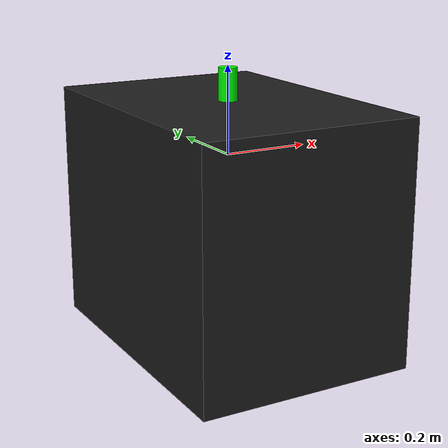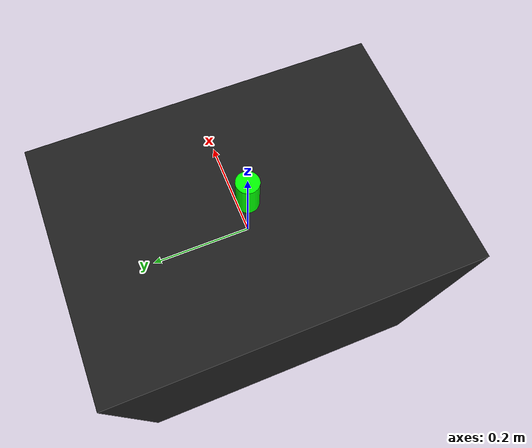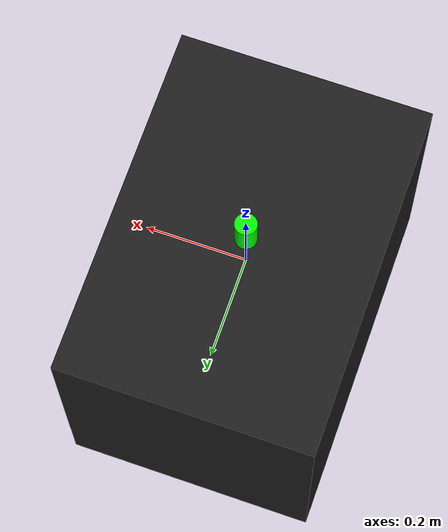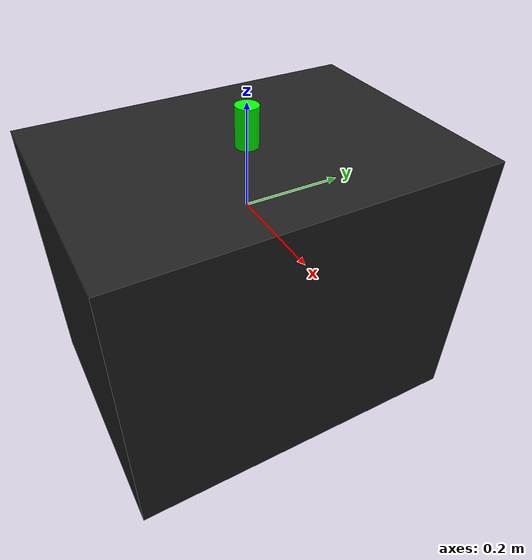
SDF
<?xml version='1.0'?>
<sdf version='1.7'>
  <model name='table0'>
    <link name='link_0'>
      <inertial>
        <mass>0.198587</mass>
        <inertia>
          <ixx>0.0133936</ixx>
          <ixy>0</ixy>
          <ixz>0</ixz>
          <iyy>0.00940129</iyy>
          <iyz>0</iyz>
          <izz>0.0123713</izz>
        </inertia>
        <pose>0 0 0 0 -0 0</pose>
      </inertial>
      <pose>0 0 -0.158872 0 -0 0</pose>
      <gravity>1</gravity>
      <self_collide>1</self_collide>
      <kinematic>0</kinematic>
      <enable_wind>0</enable_wind>
      <visual name='visual'>
        <pose>0 0 0 0 -0 0</pose>
        <geometry>
          <box>
            <size>0.503149 0.703139 0.561189</size>
          </box>
        </geometry>
        <material>
          <lighting>1</lighting>
          <script>
            <uri>file://media/materials/scripts/gazebo.material</uri>
            <name>Gazebo/Black</name>
          </script>
          <shader type='pixel'>
            <normal_map>__default__</normal_map>
          </shader>
          <ambient>0 0 0 1</ambient>
          <diffuse>0 0 0 1</diffuse>
          <specular>0 0 0 1</specular>
          <emissive>0 0 0 1</emissive>
        </material>
        <transparency>0</transparency>
        <cast_shadows>1</cast_shadows>
      </visual>
      <collision name='collision'>
        <laser_retro>0</laser_retro>
        <max_contacts>10</max_contacts>
        <pose>0 0 0 0 -0 0</pose>
        <geometry>
          <box>
            <size>0.503149 0.703139 0.561189</size>
          </box>
        </geometry>
        <surface>
          <friction>
            <ode>
              <mu>1</mu>
              <mu2>1</mu2>
              <fdir1>0 0 0</fdir1>
              <slip1>0</slip1>
              <slip2>0</slip2>
            </ode>
            <torsional>
              <coefficient>1</coefficient>
              <patch_radius>0</patch_radius>
              <surface_radius>0</surface_radius>
              <use_patch_radius>1</use_patch_radius>
              <ode>
                <slip>0</slip>
              </ode>
            </torsional>
          </friction>
          <bounce>
            <restitution_coefficient>0</restitution_coefficient>
            <threshold>1e+06</threshold>
          </bounce>
          <contact>
            <collide_without_contact>0</collide_without_contact>
            <collide_without_contact_bitmask>1</collide_without_contact_bitmask>
            <collide_bitmask>1</collide_bitmask>
            <ode>
              <soft_cfm>0</soft_cfm>
              <soft_erp>0.2</soft_erp>
              <kp>1e+13</kp>
              <kd>1</kd>
              <max_vel>0.01</max_vel>
              <min_depth>0</min_depth>
            </ode>
            <bullet>
              <split_impulse>1</split_impulse>
              <split_impulse_penetration_threshold>-0.01</split_impulse_penetration_threshold>
              <soft_cfm>0</soft_cfm>
              <soft_erp>0.2</soft_erp>
              <kp>1e+13</kp>
              <kd>1</kd>
            </bullet>
          </contact>
        </surface>
      </collision>
    </link>
    <link name='link_1'>
      <inertial>
        <mass>0.00013606</mass>
        <inertia>
          <ixx>8e-08</ixx>
          <ixy>0</ixy>
          <ixz>0</ixz>
          <iyy>8e-08</iyy>
          <iyz>0</iyz>
          <izz>3e-08</izz>
        </inertia>
        <pose>0 0 -0.01 0 -0 0</pose>
      </inertial>
      <pose>0 0 0.158872 0 -0 0</pose>
      <gravity>1</gravity>
      <self_collide>1</self_collide>
      <kinematic>0</kinematic>
      <enable_wind>0</enable_wind>
      <visual name='visual'>
        <pose>0 0 0 0 -0 0</pose>
        <geometry>
          <cylinder>
            <radius>0.0214515</radius>
            <length>0.0742978</length>
          </cylinder>
        </geometry>
        <material>
          <lighting>1</lighting>
          <script>
            <uri>file://media/materials/scripts/gazebo.material</uri>
            <name>Gazebo/Grey</name>
          </script>
          <shader type='pixel'>
            <normal_map>__default__</normal_map>
          </shader>
          <ambient>0 1 0 1</ambient>
          <diffuse>0 1 0 1</diffuse>
          <specular>0 1 0 1</specular>
          <emissive>0 1 0 1</emissive>
        </material>
        <transparency>0</transparency>
        <cast_shadows>1</cast_shadows>
      </visual>
      <collision name='collision'>
        <laser_retro>0</laser_retro>
        <max_contacts>10</max_contacts>
        <pose>0 0 0 0 -0 0</pose>
        <geometry>
          <cylinder>
            <radius>0.021452</radius>
            <length>0.074298</length>
          </cylinder>
        </geometry>
        <surface>
          <friction>
            <ode>
              <mu>1</mu>
              <mu2>1</mu2>
              <fdir1>0 0 0</fdir1>
              <slip1>0</slip1>
              <slip2>0</slip2>
            </ode>
            <torsional>
              <coefficient>1</coefficient>
              <patch_radius>0</patch_radius>
              <surface_radius>0</surface_radius>
              <use_patch_radius>1</use_patch_radius>
              <ode>
                <slip>0</slip>
              </ode>
            </torsional>
          </friction>
          <bounce>
            <restitution_coefficient>0</restitution_coefficient>
            <threshold>1e+06</threshold>
          </bounce>
          <contact>
            <collide_without_contact>0</collide_without_contact>
            <collide_without_contact_bitmask>1</collide_without_contact_bitmask>
            <collide_bitmask>1</collide_bitmask>
            <ode>
              <soft_cfm>0</soft_cfm>
              <soft_erp>0.2</soft_erp>
              <kp>1e+13</kp>
              <kd>1</kd>
              <max_vel>0.01</max_vel>
              <min_depth>0</min_depth>
            </ode>
            <bullet>
              <split_impulse>1</split_impulse>
              <split_impulse_penetration_threshold>-0.01</split_impulse_penetration_threshold>
              <soft_cfm>0</soft_cfm>
              <soft_erp>0.2</soft_erp>
              <kp>1e+13</kp>
              <kd>1</kd>
            </bullet>
          </contact>
        </surface>
      </collision>
    </link>
    <static>0</static>
    <allow_auto_disable>1</allow_auto_disable>
  </model>
</sdf>
